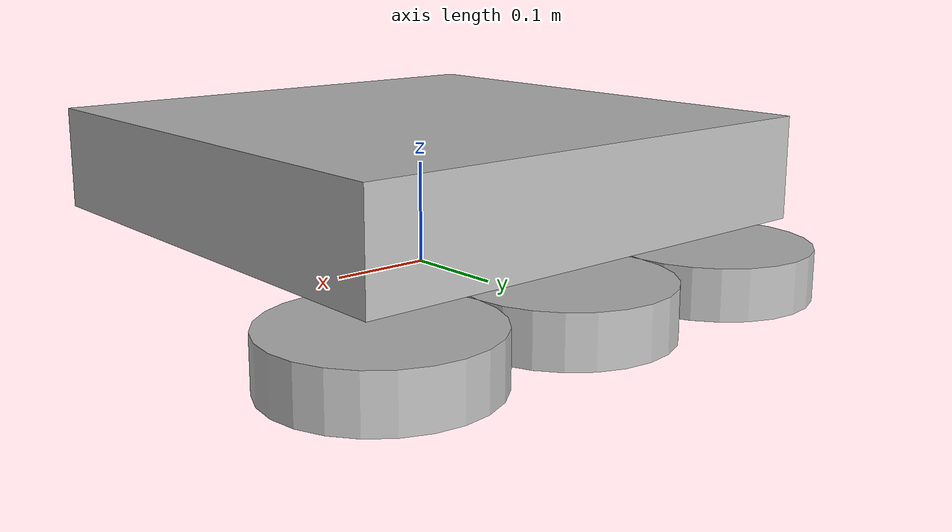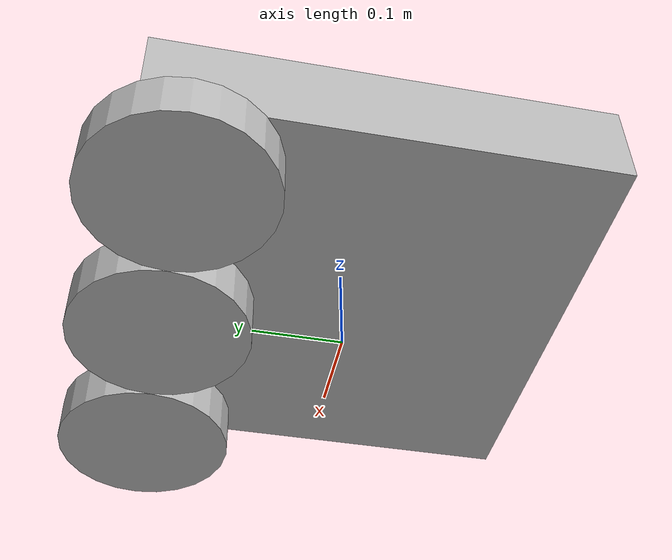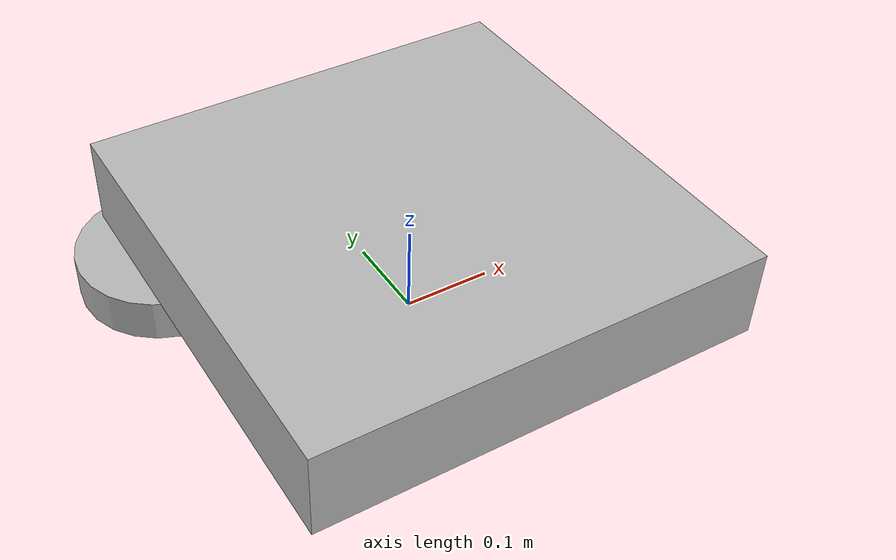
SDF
<?xml version="1.0" ?>
<sdf version="1.6">
  <model name="three_wheel_robot">
    <static>false</static>
    <link name="base_link">
      <pose>0 0 0.1 0 0 0</pose>
      <collision name="collision">
        <geometry>
          <box>
            <size>0.5 0.5 0.1</size>
          </box>
        </geometry>
      </collision>
      <visual name="visual">
        <geometry>
          <box>
            <size>0.5 0.5 0.1</size>
          </box>
        </geometry>
      </visual>
      <sensor name="proximity_sensor" type="contact">
        <pose>0 0 0.1 0 0 0</pose>
        <contact>
          <topic>~/proximity_sensor</topic>
        </contact>
      </sensor>
      <sensor name="gyroscope" type="imu">
        <pose>0 0 0 0 0 0</pose>
        <imu>
          <topic>~/gyroscope</topic>
        </imu>
      </sensor>
      <sensor name="camera" type="camera">
        <pose>0.2 0 0.1 0 0 0</pose>
        <camera>
          <horizontal_fov>1.047</horizontal_fov>
          <image>
            <width>640</width>
            <height>480</height>
          </image>
          <clip>
            <near>0.1</near>
            <far>100</far>
          </clip>
        </camera>
      </sensor>
    </link>
    <link name="wheel_left">
      <pose>-0.2 0.2 0 0 0 0</pose>
      <collision name="collision">
        <geometry>
          <cylinder>
            <radius>0.1</radius>
            <length>0.05</length>
          </cylinder>
        </geometry>
      </collision>
      <visual name="visual">
        <geometry>
          <cylinder>
            <radius>0.1</radius>
            <length>0.05</length>
          </cylinder>
        </geometry>
      </visual>
    </link>
    <link name="wheel_right">
      <pose>0.2 0.2 0 0 0 0</pose>
      <collision name="collision">
        <geometry>
          <cylinder>
            <radius>0.1</radius>
            <length>0.05</length>
          </cylinder>
        </geometry>
      </collision>
      <visual name="visual">
        <geometry>
          <cylinder>
            <radius>0.1</radius>
            <length>0.05</length>
          </cylinder>
        </geometry>
      </visual>
    </link>
    <link name="wheel_rear">
      <pose>0 0.2 0 0 0 0</pose>
      <collision name="collision">
        <geometry>
          <cylinder>
            <radius>0.1</radius>
            <length>0.05</length>
          </cylinder>
        </geometry>
      </collision>
      <visual name="visual">
        <geometry>
          <cylinder>
            <radius>0.1</radius>
            <length>0.05</length>
          </cylinder>
        </geometry>
      </visual>
    </link>
    <joint name="left_wheel_hinge" type="revolute">
      <parent>base_link</parent>
      <child>wheel_left</child>
      <axis>
        <xyz>0 1 0</xyz>
        <limit>
          <lower>-1.0</lower>
          <upper>1.0</upper>
        </limit>
      </axis>
    </joint>
    <joint name="right_wheel_hinge" type="revolute">
      <parent>base_link</parent>
      <child>wheel_right</child>
      <axis>
        <xyz>0 1 0</xyz>
        <limit>
          <lower>-1.0</lower>
          <upper>1.0</upper>
        </limit>
      </axis>
    </joint>
    <joint name="rear_wheel_hinge" type="revolute">
      <parent>base_link</parent>
      <child>wheel_rear</child>
      <axis>
        <xyz>0 1 0</xyz>
        <limit>
          <lower>-1.0</lower>
          <upper>1.0</upper>
        </limit>
      </axis>
    </joint>
  </model>
</sdf>
